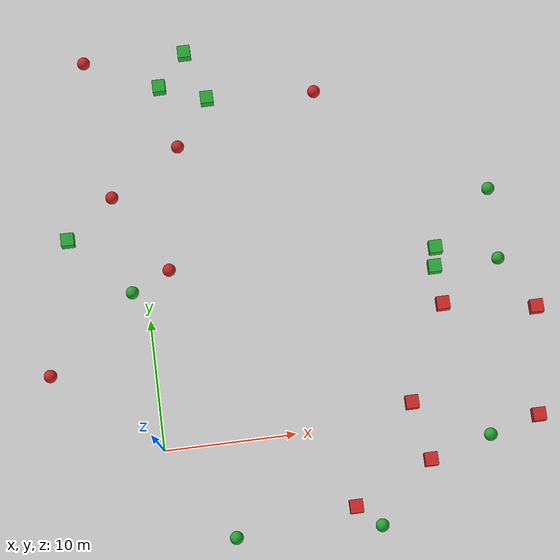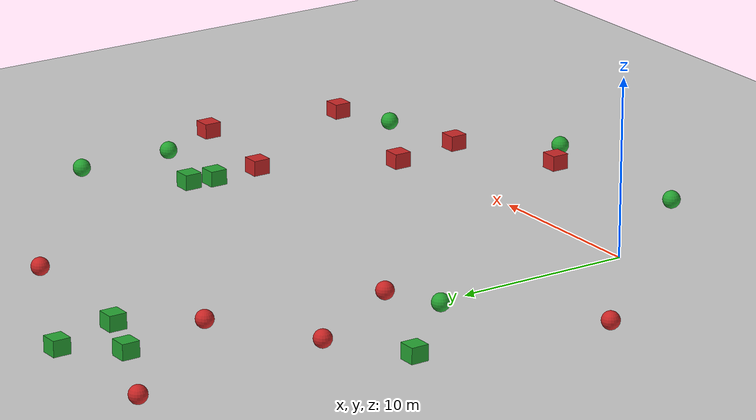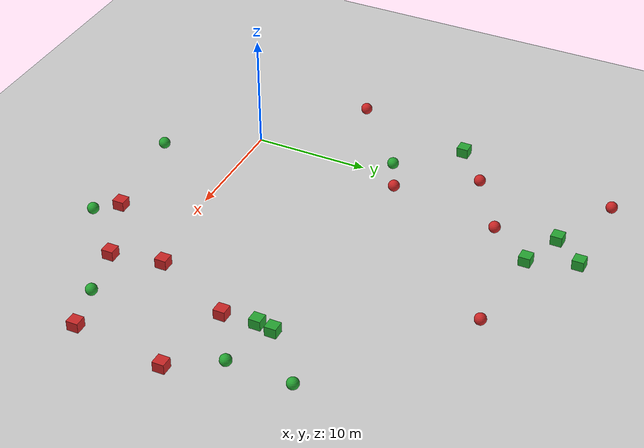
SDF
<sdf version="1.6">
 <world name="default">
  <light name="sun" type="directional">
   <pose>0 0 10 0 -0 0</pose>
   <diffuse>0.8 0.8 0.8 1</diffuse>
   <specular>0.1 0.1 0.1 1</specular>
   <attenuation>
    <range>1000</range>
    <constant>0.9</constant>
    <linear>0.01</linear>
    <quadratic>0.001</quadratic>
   </attenuation>
   <direction>-0.5 0.5 -1</direction>
  </light>
  <model name="ground_plane">
   <static>1</static>
   <link name="link">
    <collision name="collision">
     <geometry><plane><normal>0 0 1</normal><size>100 100</size></plane></geometry>
     <surface><friction><ode><mu>100</mu><mu2>50</mu2></ode></friction></surface>
    </collision>
    <visual name="visual">
     <cast_shadows>0</cast_shadows>
     <geometry><plane><normal>0 0 1</normal><size>100 100</size></plane></geometry>
     <material>
      <script><uri>file://media/materials/scripts/gazebo.material</uri><name>Gazebo/Grey</name></script>
     </material>
    </visual>
   </link>
  </model>
  <model name="unit_box_red_6">
   <pose>18.9578660005 1.25260317377 0.329741 0 -0 0</pose>
   <link name="link">
    <inertial>
     <mass>1</mass>
     <inertia>
      <ixx>0.166667</ixx>
      <ixy>0</ixy>
      <ixz>0</ixz>
      <iyy>0.166667</iyy>
      <iyz>0</iyz>
      <izz>0.166667</izz>
     </inertia>
    </inertial>
    <collision name="collision"><geometry><box><size>1 1 0.999999</size></box></geometry></collision>
    <visual name="visual">
     <geometry><box><size>1 1 0.999999</size></box></geometry>
     <material>
      <script><name>Gazebo/Red</name><uri>file://media/materials/scripts/gazebo.material</uri></script>
     </material>
    </visual>
   </link>
  </model>
  <model name="unit_box_red_5">
   <pose>19.7690614596 -3.17909921679 0.329741 0 -0 0</pose>
   <link name="link">
    <inertial>
     <mass>1</mass>
     <inertia>
      <ixx>0.166667</ixx>
      <ixy>0</ixy>
      <ixz>0</ixz>
      <iyy>0.166667</iyy>
      <iyz>0</iyz>
      <izz>0.166667</izz>
     </inertia>
    </inertial>
    <collision name="collision"><geometry><box><size>1 1 0.999999</size></box></geometry></collision>
    <visual name="visual">
     <geometry><box><size>1 1 0.999999</size></box></geometry>
     <material>
      <script><name>Gazebo/Red</name><uri>file://media/materials/scripts/gazebo.material</uri></script>
     </material>
    </visual>
   </link>
  </model>
  <model name="unit_box_red_4">
   <pose>28.3153079103 -0.866341564622 0.329741 0 -0 0</pose>
   <link name="link">
    <inertial>
     <mass>1</mass>
     <inertia>
      <ixx>0.166667</ixx>
      <ixy>0</ixy>
      <ixz>0</ixz>
      <iyy>0.166667</iyy>
      <iyz>0</iyz>
      <izz>0.166667</izz>
     </inertia>
    </inertial>
    <collision name="collision"><geometry><box><size>1 1 0.999999</size></box></geometry></collision>
    <visual name="visual">
     <geometry><box><size>1 1 0.999999</size></box></geometry>
     <material>
      <script><name>Gazebo/Red</name><uri>file://media/materials/scripts/gazebo.material</uri></script>
     </material>
    </visual>
   </link>
  </model>
  <model name="unit_box_red_3">
   <pose>29.4666176498 7.37865025274 0.329741 0 -0 0</pose>
   <link name="link">
    <inertial>
     <mass>1</mass>
     <inertia>
      <ixx>0.166667</ixx>
      <ixy>0</ixy>
      <ixz>0</ixz>
      <iyy>0.166667</iyy>
      <iyz>0</iyz>
      <izz>0.166667</izz>
     </inertia>
    </inertial>
    <collision name="collision"><geometry><box><size>1 1 0.999999</size></box></geometry></collision>
    <visual name="visual">
     <geometry><box><size>1 1 0.999999</size></box></geometry>
     <material>
      <script><name>Gazebo/Red</name><uri>file://media/materials/scripts/gazebo.material</uri></script>
     </material>
    </visual>
   </link>
  </model>
  <model name="unit_box_red_2">
   <pose>13.7447771719 -5.95116550536 0.329741 0 -0 0</pose>
   <link name="link">
    <inertial>
     <mass>1</mass>
     <inertia>
      <ixx>0.166667</ixx>
      <ixy>0</ixy>
      <ixz>0</ixz>
      <iyy>0.166667</iyy>
      <iyz>0</iyz>
      <izz>0.166667</izz>
     </inertia>
    </inertial>
    <collision name="collision"><geometry><box><size>1 1 0.999999</size></box></geometry></collision>
    <visual name="visual">
     <geometry><box><size>1 1 0.999999</size></box></geometry>
     <material>
      <script><name>Gazebo/Red</name><uri>file://media/materials/scripts/gazebo.material</uri></script>
     </material>
    </visual>
   </link>
  </model>
  <model name="unit_box_red_1">
   <pose>22.3956089958 8.50808017422 0.329741 0 -0 0</pose>
   <link name="link">
    <inertial>
     <mass>1</mass>
     <inertia>
      <ixx>0.166667</ixx>
      <ixy>0</ixy>
      <ixz>0</ixz>
      <iyy>0.166667</iyy>
      <iyz>0</iyz>
      <izz>0.166667</izz>
     </inertia>
    </inertial>
    <collision name="collision"><geometry><box><size>1 1 0.999999</size></box></geometry></collision>
    <visual name="visual">
     <geometry><box><size>1 1 0.999999</size></box></geometry>
     <material>
      <script><name>Gazebo/Red</name><uri>file://media/materials/scripts/gazebo.material</uri></script>
     </material>
    </visual>
   </link>
  </model>
  <model name="unit_sphere_red_6">
   <pose>14.7707887085 26.7478341216 0.5 0 -0 0</pose>
   <link name="link">
    <inertial>
     <mass>1</mass>
     <inertia><ixx>0.1</ixx><ixy>0</ixy><ixz>0</ixz><iyy>0.1</iyy><iyz>0</iyz><izz>0.1</izz></inertia>
    </inertial>
    <collision name="collision"><geometry><sphere><radius>0.5</radius></sphere></geometry></collision>
    <visual name="visual">
     <geometry><sphere><radius>0.5</radius></sphere></geometry>
     <material>
      <script><name>Gazebo/Red</name><uri>file://media/materials/scripts/gazebo.material</uri></script>
     </material>
    </visual>
   </link>
  </model>
  <model name="unit_sphere_red_5">
   <pose>-3.10258832904 31.3678893209 0.5 0 -0 0</pose>
   <link name="link">
    <inertial>
     <mass>1</mass>
     <inertia><ixx>0.1</ixx><ixy>0</ixy><ixz>0</ixz><iyy>0.1</iyy><iyz>0</iyz><izz>0.1</izz></inertia>
    </inertial>
    <collision name="collision"><geometry><sphere><radius>0.5</radius></sphere></geometry></collision>
    <visual name="visual">
     <geometry><sphere><radius>0.5</radius></sphere></geometry>
     <material>
      <script><name>Gazebo/Red</name><uri>file://media/materials/scripts/gazebo.material</uri></script>
     </material>
    </visual>
   </link>
  </model>
  <model name="unit_sphere_red_4">
   <pose>-1.95659946334 20.032105735 0.5 0 -0 0</pose>
   <link name="link">
    <inertial>
     <mass>1</mass>
     <inertia><ixx>0.1</ixx><ixy>0</ixy><ixz>0</ixz><iyy>0.1</iyy><iyz>0</iyz><izz>0.1</izz></inertia>
    </inertial>
    <collision name="collision"><geometry><sphere><radius>0.5</radius></sphere></geometry></collision>
    <visual name="visual">
     <geometry><sphere><radius>0.5</radius></sphere></geometry>
     <material>
      <script><name>Gazebo/Red</name><uri>file://media/materials/scripts/gazebo.material</uri></script>
     </material>
    </visual>
   </link>
  </model>
  <model name="unit_sphere_red_3">
   <pose>1.8538769535 13.7231726494 0.5 0 -0 0</pose>
   <link name="link">
    <inertial>
     <mass>1</mass>
     <inertia><ixx>0.1</ixx><ixy>0</ixy><ixz>0</ixz><iyy>0.1</iyy><iyz>0</iyz><izz>0.1</izz></inertia>
    </inertial>
    <collision name="collision"><geometry><sphere><radius>0.5</radius></sphere></geometry></collision>
    <visual name="visual">
     <geometry><sphere><radius>0.5</radius></sphere></geometry>
     <material>
      <script><name>Gazebo/Red</name><uri>file://media/materials/scripts/gazebo.material</uri></script>
     </material>
    </visual>
   </link>
  </model>
  <model name="unit_sphere_red_2">
   <pose>-7.94668085139 6.62121100715 0.5 0 -0 0</pose>
   <link name="link">
    <inertial>
     <mass>1</mass>
     <inertia><ixx>0.1</ixx><ixy>0</ixy><ixz>0</ixz><iyy>0.1</iyy><iyz>0</iyz><izz>0.1</izz></inertia>
    </inertial>
    <collision name="collision"><geometry><sphere><radius>0.5</radius></sphere></geometry></collision>
    <visual name="visual">
     <geometry><sphere><radius>0.5</radius></sphere></geometry>
     <material>
      <script><name>Gazebo/Red</name><uri>file://media/materials/scripts/gazebo.material</uri></script>
     </material>
    </visual>
   </link>
  </model>
  <model name="unit_sphere_red_1">
   <pose>3.57515642853 23.5301927255 0.5 0 -0 0</pose>
   <link name="link">
    <inertial>
     <mass>1</mass>
     <inertia><ixx>0.1</ixx><ixy>0</ixy><ixz>0</ixz><iyy>0.1</iyy><iyz>0</iyz><izz>0.1</izz></inertia>
    </inertial>
    <collision name="collision"><geometry><sphere><radius>0.5</radius></sphere></geometry></collision>
    <visual name="visual">
     <geometry><sphere><radius>0.5</radius></sphere></geometry>
     <material>
      <script><name>Gazebo/Red</name><uri>file://media/materials/scripts/gazebo.material</uri></script>
     </material>
    </visual>
   </link>
  </model>
  <model name="unit_box_green_6">
   <pose>2.6368752905 28.6703751651 0.329741 0 -0 0</pose>
   <link name="link">
    <inertial>
     <mass>1</mass>
     <inertia>
      <ixx>0.166667</ixx>
      <ixy>0</ixy>
      <ixz>0</ixz>
      <iyy>0.166667</iyy>
      <iyz>0</iyz>
      <izz>0.166667</izz>
     </inertia>
    </inertial>
    <collision name="collision"><geometry><box><size>1 1 0.999999</size></box></geometry></collision>
    <visual name="visual">
     <geometry><box><size>1 1 0.999999</size></box></geometry>
     <material>
      <script><name>Gazebo/Green</name><uri>file://media/materials/scripts/gazebo.material</uri></script>
     </material>
    </visual>
   </link>
  </model>
  <model name="unit_box_green_5">
   <pose>-5.69555374589 17.0652501276 0.329741 0 -0 0</pose>
   <link name="link">
    <inertial>
     <mass>1</mass>
     <inertia>
      <ixx>0.166667</ixx>
      <ixy>0</ixy>
      <ixz>0</ixz>
      <iyy>0.166667</iyy>
      <iyz>0</iyz>
      <izz>0.166667</izz>
     </inertia>
    </inertial>
    <collision name="collision"><geometry><box><size>1 1 0.999999</size></box></geometry></collision>
    <visual name="visual">
     <geometry><box><size>1 1 0.999999</size></box></geometry>
     <material>
      <script><name>Gazebo/Green</name><uri>file://media/materials/scripts/gazebo.material</uri></script>
     </material>
    </visual>
   </link>
  </model>
  <model name="unit_box_green_4">
   <pose>6.29048554437 27.2727927876 0.329741 0 -0 0</pose>
   <link name="link">
    <inertial>
     <mass>1</mass>
     <inertia>
      <ixx>0.166667</ixx>
      <ixy>0</ixy>
      <ixz>0</ixz>
      <iyy>0.166667</iyy>
      <iyz>0</iyz>
      <izz>0.166667</izz>
     </inertia>
    </inertial>
    <collision name="collision"><geometry><box><size>1 1 0.999999</size></box></geometry></collision>
    <visual name="visual">
     <geometry><box><size>1 1 0.999999</size></box></geometry>
     <material>
      <script><name>Gazebo/Green</name><uri>file://media/materials/scripts/gazebo.material</uri></script>
     </material>
    </visual>
   </link>
  </model>
  <model name="unit_box_green_3">
   <pose>22.188584628 11.4736370985 0.329741 0 -0 0</pose>
   <link name="link">
    <inertial>
     <mass>1</mass>
     <inertia>
      <ixx>0.166667</ixx>
      <ixy>0</ixy>
      <ixz>0</ixz>
      <iyy>0.166667</iyy>
      <iyz>0</iyz>
      <izz>0.166667</izz>
     </inertia>
    </inertial>
    <collision name="collision"><geometry><box><size>1 1 0.999999</size></box></geometry></collision>
    <visual name="visual">
     <geometry><box><size>1 1 0.999999</size></box></geometry>
     <material>
      <script><name>Gazebo/Green</name><uri>file://media/materials/scripts/gazebo.material</uri></script>
     </material>
    </visual>
   </link>
  </model>
  <model name="unit_box_green_2">
   <pose>22.4685327521 12.9632714758 0.329741 0 -0 0</pose>
   <link name="link">
    <inertial>
     <mass>1</mass>
     <inertia>
      <ixx>0.166667</ixx>
      <ixy>0</ixy>
      <ixz>0</ixz>
      <iyy>0.166667</iyy>
      <iyz>0</iyz>
      <izz>0.166667</izz>
     </inertia>
    </inertial>
    <collision name="collision"><geometry><box><size>1 1 0.999999</size></box></geometry></collision>
    <visual name="visual">
     <geometry><box><size>1 1 0.999999</size></box></geometry>
     <material>
      <script><name>Gazebo/Green</name><uri>file://media/materials/scripts/gazebo.material</uri></script>
     </material>
    </visual>
   </link>
  </model>
  <model name="unit_box_green_1">
   <pose>4.91267571835 31.2904040802 0.329741 0 -0 0</pose>
   <link name="link">
    <inertial>
     <mass>1</mass>
     <inertia>
      <ixx>0.166667</ixx>
      <ixy>0</ixy>
      <ixz>0</ixz>
      <iyy>0.166667</iyy>
      <iyz>0</iyz>
      <izz>0.166667</izz>
     </inertia>
    </inertial>
    <collision name="collision"><geometry><box><size>1 1 0.999999</size></box></geometry></collision>
    <visual name="visual">
     <geometry><box><size>1 1 0.999999</size></box></geometry>
     <material>
      <script><name>Gazebo/Green</name><uri>file://media/materials/scripts/gazebo.material</uri></script>
     </material>
    </visual>
   </link>
  </model>
  <model name="unit_sphere_green_6">
   <pose>-1.13122909751 12.3035682301 0.5 0 -0 0</pose>
   <link name="link">
    <inertial>
     <mass>1</mass>
     <inertia><ixx>0.1</ixx><ixy>0</ixy><ixz>0</ixz><iyy>0.1</iyy><iyz>0</iyz><izz>0.1</izz></inertia>
    </inertial>
    <collision name="collision"><geometry><sphere><radius>0.5</radius></sphere></geometry></collision>
    <visual name="visual">
     <geometry><sphere><radius>0.5</radius></sphere></geometry>
     <material>
      <script><name>Gazebo/Green</name><uri>file://media/materials/scripts/gazebo.material</uri></script>
     </material>
    </visual>
   </link>
  </model>
  <model name="unit_sphere_green_5">
   <pose>27.1385035586 11.4947389731 0.5 0 -0 0</pose>
   <link name="link">
    <inertial>
     <mass>1</mass>
     <inertia><ixx>0.1</ixx><ixy>0</ixy><ixz>0</ixz><iyy>0.1</iyy><iyz>0</iyz><izz>0.1</izz></inertia>
    </inertial>
    <collision name="collision"><geometry><sphere><radius>0.5</radius></sphere></geometry></collision>
    <visual name="visual">
     <geometry><sphere><radius>0.5</radius></sphere></geometry>
     <material>
      <script><name>Gazebo/Green</name><uri>file://media/materials/scripts/gazebo.material</uri></script>
     </material>
    </visual>
   </link>
  </model>
  <model name="unit_sphere_green_4">
   <pose>27.2314519592 17.110483391 0.5 0 -0 0</pose>
   <link name="link">
    <inertial>
     <mass>1</mass>
     <inertia><ixx>0.1</ixx><ixy>0</ixy><ixz>0</ixz><iyy>0.1</iyy><iyz>0</iyz><izz>0.1</izz></inertia>
    </inertial>
    <collision name="collision"><geometry><sphere><radius>0.5</radius></sphere></geometry></collision>
    <visual name="visual">
     <geometry><sphere><radius>0.5</radius></sphere></geometry>
     <material>
      <script><name>Gazebo/Green</name><uri>file://media/materials/scripts/gazebo.material</uri></script>
     </material>
    </visual>
   </link>
  </model>
  <model name="unit_sphere_green_3">
   <pose>15.4784168218 -7.56959156709 0.5 0 -0 0</pose>
   <link name="link">
    <inertial>
     <mass>1</mass>
     <inertia><ixx>0.1</ixx><ixy>0</ixy><ixz>0</ixz><iyy>0.1</iyy><iyz>0</iyz><izz>0.1</izz></inertia>
    </inertial>
    <collision name="collision"><geometry><sphere><radius>0.5</radius></sphere></geometry></collision>
    <visual name="visual">
     <geometry><sphere><radius>0.5</radius></sphere></geometry>
     <material>
      <script><name>Gazebo/Green</name><uri>file://media/materials/scripts/gazebo.material</uri></script>
     </material>
    </visual>
   </link>
  </model>
  <model name="unit_sphere_green_2">
   <pose>24.4826704562 -1.90772169072 0.5 0 -0 0</pose>
   <link name="link">
    <inertial>
     <mass>1</mass>
     <inertia><ixx>0.1</ixx><ixy>0</ixy><ixz>0</ixz><iyy>0.1</iyy><iyz>0</iyz><izz>0.1</izz></inertia>
    </inertial>
    <collision name="collision"><geometry><sphere><radius>0.5</radius></sphere></geometry></collision>
    <visual name="visual">
     <geometry><sphere><radius>0.5</radius></sphere></geometry>
     <material>
      <script><name>Gazebo/Green</name><uri>file://media/materials/scripts/gazebo.material</uri></script>
     </material>
    </visual>
   </link>
  </model>
  <model name="unit_sphere_green_1">
   <pose>4.65455131029 -7.13606859775 0.5 0 -0 0</pose>
   <link name="link">
    <inertial>
     <mass>1</mass>
     <inertia><ixx>0.1</ixx><ixy>0</ixy><ixz>0</ixz><iyy>0.1</iyy><iyz>0</iyz><izz>0.1</izz></inertia>
    </inertial>
    <collision name="collision"><geometry><sphere><radius>0.5</radius></sphere></geometry></collision>
    <visual name="visual">
     <geometry><sphere><radius>0.5</radius></sphere></geometry>
     <material>
      <script><name>Gazebo/Green</name><uri>file://media/materials/scripts/gazebo.material</uri></script>
     </material>
    </visual>
   </link>
  </model>
  <gravity>0 0 -9.8</gravity>
  <magnetic_field>6e-06 2.3e-05 -4.2e-05</magnetic_field>
  <atmosphere type="adiabatic"/>
  <physics default="0" name="default_physics" type="ode">
   <max_step_size>0.001</max_step_size>
   <real_time_factor>1</real_time_factor>
   <real_time_update_rate>1000</real_time_update_rate>
  </physics>
  <scene><ambient>0.4 0.4 0.4 1</ambient><background>0.7 0.7 0.7 1</background><shadows>1</shadows></scene>
  <spherical_coordinates>
   <surface_model>EARTH_WGS84</surface_model>
   <latitude_deg>0</latitude_deg>
   <longitude_deg>0</longitude_deg>
   <elevation>0</elevation>
   <heading_deg>0</heading_deg>
  </spherical_coordinates>
 </world>
</sdf>
